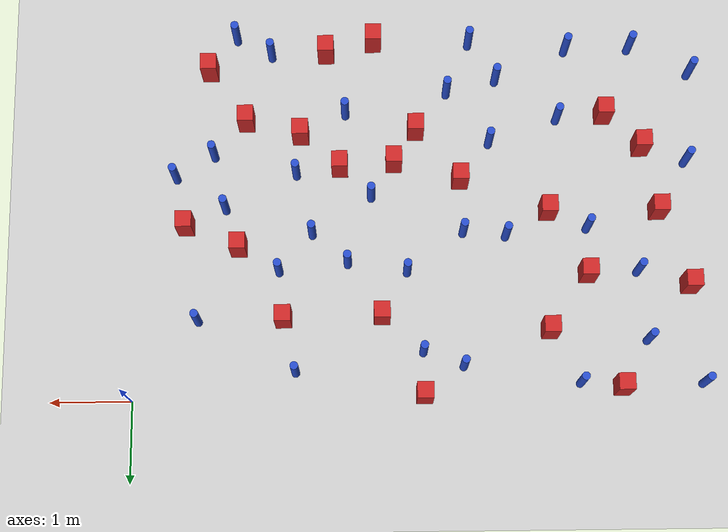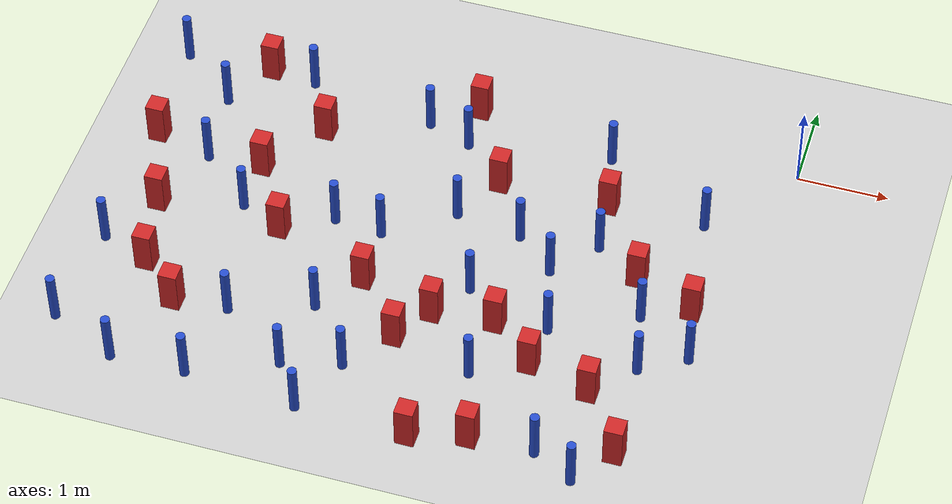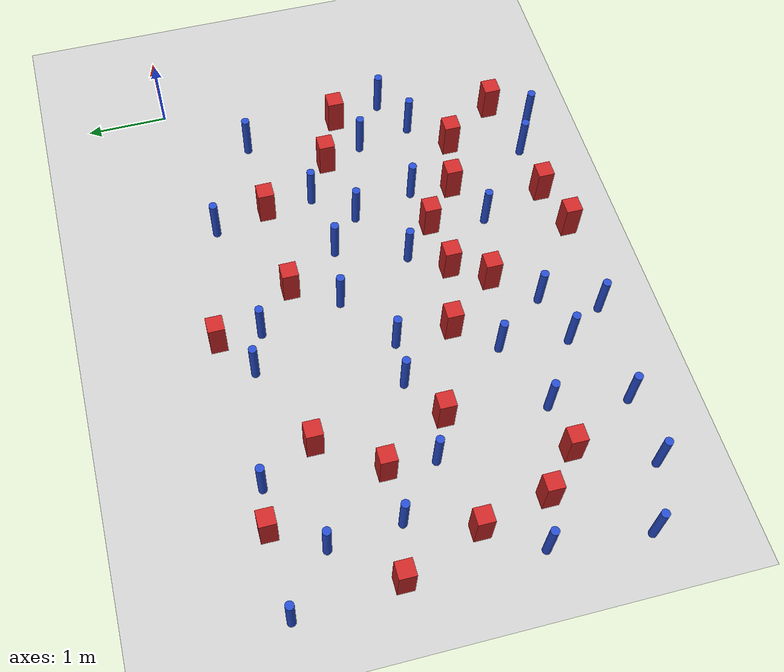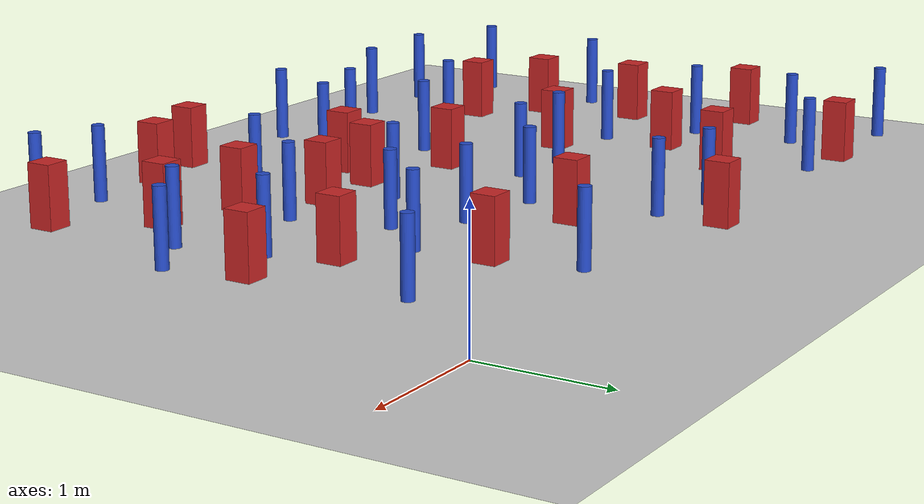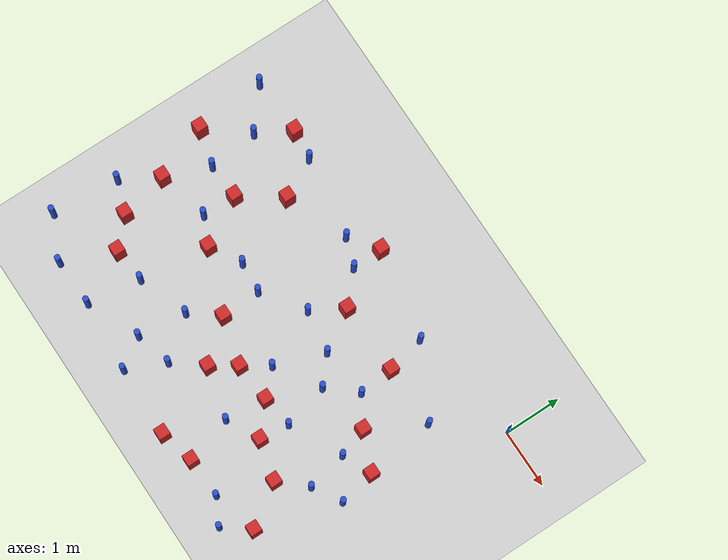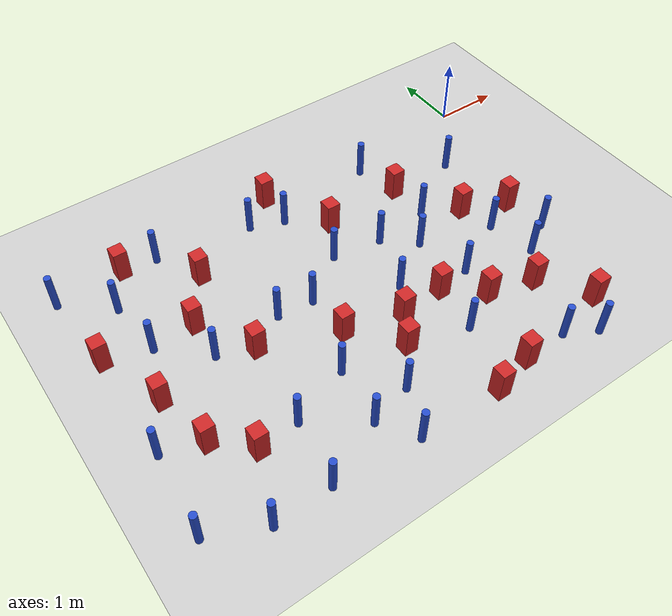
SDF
<sdf version="1.6">
 <world name="default">
  <model name="ground_plane">
   <static>1</static>
   <link name="link">
    <collision name="collision">
     <geometry><plane><normal>0 0 1</normal><size>100 100</size></plane></geometry>
     <surface><friction><ode><mu>100</mu><mu2>50</mu2></ode></friction></surface>
    </collision>
    <visual name="visual">
     <cast_shadows>0</cast_shadows>
     <geometry><plane><normal>0 0 1</normal><size>100 100</size></plane></geometry>
     <material>
      <ambient>1.0 1.0 1.0 1.0</ambient>
      <diffuse>0.8 0.8 0.8 1.0</diffuse>
      <specular>0.01 0.01 0.01 1.000000</specular>
     </material>
    </visual>
   </link>
  </model>
  <model name="square_post_obstacle2">
   <static>true</static>
   <pose>-6.32970047965 -3.15536680253 -6.11067671241e-07 -5.50515727128e-06 -8.79689657224e-07 2.37013304536e-05</pose>
   <link name="link">
    <pose>0 0 0.25 0 -0 0</pose>
    <inertial>
     <mass>100</mass>
     <inertia>
      <ixx>0.166667</ixx>
      <ixy>0</ixy>
      <ixz>0</ixz>
      <iyy>0.166667</iyy>
      <iyz>0</iyz>
      <izz>0.166667</izz>
     </inertia>
    </inertial>
    <collision name="collision"><geometry><box><size>.2 .2 .5</size></box></geometry></collision>
    <visual name="visual">
     <geometry><box><size>.2 .2 .5</size></box></geometry>
     <material>
      <script><name>Gazebo/Red</name><uri>file://media/materials/scripts/gazebo.material</uri></script>
     </material>
    </visual>
   </link>
  </model>
  <model name="pole_obstacle3">
   <static>true</static>
   <pose>-6.2227342623 -1.54788043869 -9.47619616065e-06 5.49618799738e-07 2.36310414071e-07 -1.55090534796e-07</pose>
   <link name="link">
    <pose>0 0 0.3 0 -0 0</pose>
    <inertial>
     <mass>1</mass>
     <inertia><ixx>0.145833</ixx><ixy>0</ixy><ixz>0</ixz><iyy>0.145833</iyy><iyz>0</iyz><izz>0.125</izz></inertia>
    </inertial>
    <collision name="collision">
     <geometry><cylinder><radius>0.05</radius><length>.6</length></cylinder></geometry>
    </collision>
    <visual name="visual">
     <geometry><cylinder><radius>0.05</radius><length>.6</length></cylinder></geometry>
     <material>
      <script><name>Gazebo/Blue</name><uri>file://media/materials/scripts/gazebo.material</uri></script>
     </material>
    </visual>
   </link>
  </model>
  <model name="pole_obstacle18">
   <static>true</static>
   <pose>-5.42725805433 -4.45075135304 -9.47619616065e-06 5.49618799737e-07 2.36310414037e-07 -1.55090534814e-07</pose>
   <link name="link">
    <pose>0 0 0.3 0 -0 0</pose>
    <inertial>
     <mass>1</mass>
     <inertia><ixx>0.145833</ixx><ixy>0</ixy><ixz>0</ixz><iyy>0.145833</iyy><iyz>0</iyz><izz>0.125</izz></inertia>
    </inertial>
    <collision name="collision">
     <geometry><cylinder><radius>0.05</radius><length>.6</length></cylinder></geometry>
    </collision>
    <visual name="visual">
     <geometry><cylinder><radius>0.05</radius><length>.6</length></cylinder></geometry>
     <material>
      <script><name>Gazebo/Blue</name><uri>file://media/materials/scripts/gazebo.material</uri></script>
     </material>
    </visual>
   </link>
  </model>
  <model name="pole_obstacle28">
   <static>true</static>
   <pose>-5.46663983944 -0.166174461687 -9.47619616065e-06 5.49618799737e-07 2.36310414076e-07 -1.55090534792e-07</pose>
   <link name="link">
    <pose>0 0 0.3 0 -0 0</pose>
    <inertial>
     <mass>1</mass>
     <inertia><ixx>0.145833</ixx><ixy>0</ixy><ixz>0</ixz><iyy>0.145833</iyy><iyz>0</iyz><izz>0.125</izz></inertia>
    </inertial>
    <collision name="collision">
     <geometry><cylinder><radius>0.05</radius><length>.6</length></cylinder></geometry>
    </collision>
    <visual name="visual">
     <geometry><cylinder><radius>0.05</radius><length>.6</length></cylinder></geometry>
     <material>
      <script><name>Gazebo/Blue</name><uri>file://media/materials/scripts/gazebo.material</uri></script>
     </material>
    </visual>
   </link>
  </model>
  <model name="pole_obstacle36">
   <static>true</static>
   <pose>-1.99802977172 -0.329022302632 -9.47619616065e-06 5.49618799738e-07 2.36310414057e-07 -1.55090534802e-07</pose>
   <link name="link">
    <pose>0 0 0.3 0 -0 0</pose>
    <inertial>
     <mass>1</mass>
     <inertia><ixx>0.145833</ixx><ixy>0</ixy><ixz>0</ixz><iyy>0.145833</iyy><iyz>0</iyz><izz>0.125</izz></inertia>
    </inertial>
    <collision name="collision">
     <geometry><cylinder><radius>0.05</radius><length>.6</length></cylinder></geometry>
    </collision>
    <visual name="visual">
     <geometry><cylinder><radius>0.05</radius><length>.6</length></cylinder></geometry>
     <material>
      <script><name>Gazebo/Blue</name><uri>file://media/materials/scripts/gazebo.material</uri></script>
     </material>
    </visual>
   </link>
  </model>
  <model name="pole_obstacle41">
   <static>true</static>
   <pose>-4.04974386628 -0.385702119762 -9.47619616065e-06 5.49618799737e-07 2.36310414059e-07 -1.55090534801e-07</pose>
   <link name="link">
    <pose>0 0 0.3 0 -0 0</pose>
    <inertial>
     <mass>1</mass>
     <inertia><ixx>0.145833</ixx><ixy>0</ixy><ixz>0</ixz><iyy>0.145833</iyy><iyz>0</iyz><izz>0.125</izz></inertia>
    </inertial>
    <collision name="collision">
     <geometry><cylinder><radius>0.05</radius><length>.6</length></cylinder></geometry>
    </collision>
    <visual name="visual">
     <geometry><cylinder><radius>0.05</radius><length>.6</length></cylinder></geometry>
     <material>
      <script><name>Gazebo/Blue</name><uri>file://media/materials/scripts/gazebo.material</uri></script>
     </material>
    </visual>
   </link>
  </model>
  <model name="pole_obstacle48">
   <static>true</static>
   <pose>-5.61706188393 -2.10685535667 -9.47619616065e-06 5.49618799738e-07 2.36310414051e-07 -1.55090534805e-07</pose>
   <link name="link">
    <pose>0 0 0.3 0 -0 0</pose>
    <inertial>
     <mass>1</mass>
     <inertia><ixx>0.145833</ixx><ixy>0</ixy><ixz>0</ixz><iyy>0.145833</iyy><iyz>0</iyz><izz>0.125</izz></inertia>
    </inertial>
    <collision name="collision">
     <geometry><cylinder><radius>0.05</radius><length>.6</length></cylinder></geometry>
    </collision>
    <visual name="visual">
     <geometry><cylinder><radius>0.05</radius><length>.6</length></cylinder></geometry>
     <material>
      <script><name>Gazebo/Blue</name><uri>file://media/materials/scripts/gazebo.material</uri></script>
     </material>
    </visual>
   </link>
  </model>
  <model name="square_post_obstacle54">
   <static>true</static>
   <pose>-5.13374269177 -2.32955236682 -6.11067671241e-07 -5.50515727128e-06 -8.79689657224e-07 2.37013304536e-05</pose>
   <link name="link">
    <pose>0 0 0.25 0 -0 0</pose>
    <inertial>
     <mass>100</mass>
     <inertia>
      <ixx>0.166667</ixx>
      <ixy>0</ixy>
      <ixz>0</ixz>
      <iyy>0.166667</iyy>
      <iyz>0</iyz>
      <izz>0.166667</izz>
     </inertia>
    </inertial>
    <collision name="collision"><geometry><box><size>.2 .2 .5</size></box></geometry></collision>
    <visual name="visual">
     <geometry><box><size>.2 .2 .5</size></box></geometry>
     <material>
      <script><name>Gazebo/Red</name><uri>file://media/materials/scripts/gazebo.material</uri></script>
     </material>
    </visual>
   </link>
  </model>
  <model name="square_post_obstacle55">
   <static>true</static>
   <pose>-6.855290075 -1.37495904561 -6.11067671241e-07 -5.50515727128e-06 -8.79689657224e-07 2.37013304536e-05</pose>
   <link name="link">
    <pose>0 0 0.25 0 -0 0</pose>
    <inertial>
     <mass>100</mass>
     <inertia>
      <ixx>0.166667</ixx>
      <ixy>0</ixy>
      <ixz>0</ixz>
      <iyy>0.166667</iyy>
      <iyz>0</iyz>
      <izz>0.166667</izz>
     </inertia>
    </inertial>
    <collision name="collision"><geometry><box><size>.2 .2 .5</size></box></geometry></collision>
    <visual name="visual">
     <geometry><box><size>.2 .2 .5</size></box></geometry>
     <material>
      <script><name>Gazebo/Red</name><uri>file://media/materials/scripts/gazebo.material</uri></script>
     </material>
    </visual>
   </link>
  </model>
  <model name="pole_obstacle53">
   <static>true</static>
   <pose>-4.60694974323 -2.01808500162 -9.47619616065e-06 5.49618799737e-07 2.36310414063e-07 -1.55090534798e-07</pose>
   <link name="link">
    <pose>0 0 0.3 0 -0 0</pose>
    <inertial>
     <mass>1</mass>
     <inertia><ixx>0.145833</ixx><ixy>0</ixy><ixz>0</ixz><iyy>0.145833</iyy><iyz>0</iyz><izz>0.125</izz></inertia>
    </inertial>
    <collision name="collision">
     <geometry><cylinder><radius>0.05</radius><length>.6</length></cylinder></geometry>
    </collision>
    <visual name="visual">
     <geometry><cylinder><radius>0.05</radius><length>.6</length></cylinder></geometry>
     <material>
      <script><name>Gazebo/Blue</name><uri>file://media/materials/scripts/gazebo.material</uri></script>
     </material>
    </visual>
   </link>
  </model>
  <model name="pole_obstacle56">
   <static>true</static>
   <pose>-5.28809597755 -3.53105260636 -9.47619616065e-06 5.49618799738e-07 2.36310414051e-07 -1.55090534805e-07</pose>
   <link name="link">
    <pose>0 0 0.3 0 -0 0</pose>
    <inertial>
     <mass>1</mass>
     <inertia><ixx>0.145833</ixx><ixy>0</ixy><ixz>0</ixz><iyy>0.145833</iyy><iyz>0</iyz><izz>0.125</izz></inertia>
    </inertial>
    <collision name="collision">
     <geometry><cylinder><radius>0.05</radius><length>.6</length></cylinder></geometry>
    </collision>
    <visual name="visual">
     <geometry><cylinder><radius>0.05</radius><length>.6</length></cylinder></geometry>
     <material>
      <script><name>Gazebo/Blue</name><uri>file://media/materials/scripts/gazebo.material</uri></script>
     </material>
    </visual>
   </link>
  </model>
  <model name="pole_obstacle58">
   <static>true</static>
   <pose>-4.42603766502 -3.22605797215 -9.47619616065e-06 5.49618799738e-07 2.36310414051e-07 -1.55090534805e-07</pose>
   <link name="link">
    <pose>0 0 0.3 0 -0 0</pose>
    <inertial>
     <mass>1</mass>
     <inertia><ixx>0.145833</ixx><ixy>0</ixy><ixz>0</ixz><iyy>0.145833</iyy><iyz>0</iyz><izz>0.125</izz></inertia>
    </inertial>
    <collision name="collision">
     <geometry><cylinder><radius>0.05</radius><length>.6</length></cylinder></geometry>
    </collision>
    <visual name="visual">
     <geometry><cylinder><radius>0.05</radius><length>.6</length></cylinder></geometry>
     <material>
      <script><name>Gazebo/Blue</name><uri>file://media/materials/scripts/gazebo.material</uri></script>
     </material>
    </visual>
   </link>
  </model>
  <model name="square_post_obstacle66">
   <static>true</static>
   <pose>-3.05830245506 -1.02510661945 -6.11067671241e-07 -5.50515727128e-06 -8.79689657224e-07 2.37013304536e-05</pose>
   <link name="link">
    <pose>0 0 0.25 0 -0 0</pose>
    <inertial>
     <mass>100</mass>
     <inertia>
      <ixx>0.166667</ixx>
      <ixy>0</ixy>
      <ixz>0</ixz>
      <iyy>0.166667</iyy>
      <iyz>0</iyz>
      <izz>0.166667</izz>
     </inertia>
    </inertial>
    <collision name="collision"><geometry><box><size>.2 .2 .5</size></box></geometry></collision>
    <visual name="visual">
     <geometry><box><size>.2 .2 .5</size></box></geometry>
     <material>
      <script><name>Gazebo/Red</name><uri>file://media/materials/scripts/gazebo.material</uri></script>
     </material>
    </visual>
   </link>
  </model>
  <model name="pole_obstacle64">
   <static>true</static>
   <pose>-6.88025914038 -2.95133005864 -9.47619616065e-06 5.49618799738e-07 2.36310414051e-07 -1.55090534805e-07</pose>
   <link name="link">
    <pose>0 0 0.3 0 -0 0</pose>
    <inertial>
     <mass>1</mass>
     <inertia><ixx>0.145833</ixx><ixy>0</ixy><ixz>0</ixz><iyy>0.145833</iyy><iyz>0</iyz><izz>0.125</izz></inertia>
    </inertial>
    <collision name="collision">
     <geometry><cylinder><radius>0.05</radius><length>.6</length></cylinder></geometry>
    </collision>
    <visual name="visual">
     <geometry><cylinder><radius>0.05</radius><length>.6</length></cylinder></geometry>
     <material>
      <script><name>Gazebo/Blue</name><uri>file://media/materials/scripts/gazebo.material</uri></script>
     </material>
    </visual>
   </link>
  </model>
  <model name="pole_obstacle67">
   <static>true</static>
   <pose>-3.37593583906 -1.57119827152 -9.47619616065e-06 5.49618799737e-07 2.36310414072e-07 -1.55090534793e-07</pose>
   <link name="link">
    <pose>0 0 0.3 0 -0 0</pose>
    <inertial>
     <mass>1</mass>
     <inertia><ixx>0.145833</ixx><ixy>0</ixy><ixz>0</ixz><iyy>0.145833</iyy><iyz>0</iyz><izz>0.125</izz></inertia>
    </inertial>
    <collision name="collision">
     <geometry><cylinder><radius>0.05</radius><length>.6</length></cylinder></geometry>
    </collision>
    <visual name="visual">
     <geometry><cylinder><radius>0.05</radius><length>.6</length></cylinder></geometry>
     <material>
      <script><name>Gazebo/Blue</name><uri>file://media/materials/scripts/gazebo.material</uri></script>
     </material>
    </visual>
   </link>
  </model>
  <model name="square_post_obstacle71">
   <static>true</static>
   <pose>-3.22741583679 -2.97727601868 -6.11067671241e-07 -5.50515727128e-06 -8.79689657224e-07 2.37013304536e-05</pose>
   <link name="link">
    <pose>0 0 0.25 0 -0 0</pose>
    <inertial>
     <mass>100</mass>
     <inertia>
      <ixx>0.166667</ixx>
      <ixy>0</ixy>
      <ixz>0</ixz>
      <iyy>0.166667</iyy>
      <iyz>0</iyz>
      <izz>0.166667</izz>
     </inertia>
    </inertial>
    <collision name="collision"><geometry><box><size>.2 .2 .5</size></box></geometry></collision>
    <visual name="visual">
     <geometry><box><size>.2 .2 .5</size></box></geometry>
     <material>
      <script><name>Gazebo/Red</name><uri>file://media/materials/scripts/gazebo.material</uri></script>
     </material>
    </visual>
   </link>
  </model>
  <model name="pole_obstacle84">
   <static>true</static>
   <pose>-4.19764110982 -4.55271410597 -9.47619616065e-06 5.49618799737e-07 2.36310414037e-07 -1.55090534814e-07</pose>
   <link name="link">
    <pose>0 0 0.3 0 -0 0</pose>
    <inertial>
     <mass>1</mass>
     <inertia><ixx>0.145833</ixx><ixy>0</ixy><ixz>0</ixz><iyy>0.145833</iyy><iyz>0</iyz><izz>0.125</izz></inertia>
    </inertial>
    <collision name="collision">
     <geometry><cylinder><radius>0.05</radius><length>.6</length></cylinder></geometry>
    </collision>
    <visual name="visual">
     <geometry><cylinder><radius>0.05</radius><length>.6</length></cylinder></geometry>
     <material>
      <script><name>Gazebo/Blue</name><uri>file://media/materials/scripts/gazebo.material</uri></script>
     </material>
    </visual>
   </link>
  </model>
  <model name="pole_obstacle98">
   <static>true</static>
   <pose>-1.12800165078 -2.39577294056 -9.47619616065e-06 5.49618799737e-07 2.36310414062e-07 -1.55090534798e-07</pose>
   <link name="link">
    <pose>0 0 0.3 0 -0 0</pose>
    <inertial>
     <mass>1</mass>
     <inertia><ixx>0.145833</ixx><ixy>0</ixy><ixz>0</ixz><iyy>0.145833</iyy><iyz>0</iyz><izz>0.125</izz></inertia>
    </inertial>
    <collision name="collision">
     <geometry><cylinder><radius>0.05</radius><length>.6</length></cylinder></geometry>
    </collision>
    <visual name="visual">
     <geometry><cylinder><radius>0.05</radius><length>.6</length></cylinder></geometry>
     <material>
      <script><name>Gazebo/Blue</name><uri>file://media/materials/scripts/gazebo.material</uri></script>
     </material>
    </visual>
   </link>
  </model>
  <model name="pole_obstacle103">
   <static>true</static>
   <pose>-2.62564040863 -3.62918442131 -9.47619616065e-06 5.49618799737e-07 2.36310414051e-07 -1.55090534807e-07</pose>
   <link name="link">
    <pose>0 0 0.3 0 -0 0</pose>
    <inertial>
     <mass>1</mass>
     <inertia><ixx>0.145833</ixx><ixy>0</ixy><ixz>0</ixz><iyy>0.145833</iyy><iyz>0</iyz><izz>0.125</izz></inertia>
    </inertial>
    <collision name="collision">
     <geometry><cylinder><radius>0.05</radius><length>.6</length></cylinder></geometry>
    </collision>
    <visual name="visual">
     <geometry><cylinder><radius>0.05</radius><length>.6</length></cylinder></geometry>
     <material>
      <script><name>Gazebo/Blue</name><uri>file://media/materials/scripts/gazebo.material</uri></script>
     </material>
    </visual>
   </link>
  </model>
  <model name="square_post_obstacle92">
   <static>true</static>
   <pose>-0.91803826967 -4.21366810012 -6.11067671241e-07 -5.50515727128e-06 -8.79689657224e-07 2.37013304536e-05</pose>
   <link name="link">
    <pose>0 0 0.25 0 -0 0</pose>
    <inertial>
     <mass>100</mass>
     <inertia>
      <ixx>0.166667</ixx>
      <ixy>0</ixy>
      <ixz>0</ixz>
      <iyy>0.166667</iyy>
      <iyz>0</iyz>
      <izz>0.166667</izz>
     </inertia>
    </inertial>
    <collision name="collision"><geometry><box><size>.2 .2 .5</size></box></geometry></collision>
    <visual name="visual">
     <geometry><box><size>.2 .2 .5</size></box></geometry>
     <material>
      <script><name>Gazebo/Red</name><uri>file://media/materials/scripts/gazebo.material</uri></script>
     </material>
    </visual>
   </link>
  </model>
  <model name="square_post_obstacle98">
   <static>true</static>
   <pose>-1.38392548692 -3.52940145345 -6.11067671241e-07 -5.50515727128e-06 -8.79689657224e-07 2.37013304536e-05</pose>
   <link name="link">
    <pose>0 0 0.25 0 -0 0</pose>
    <inertial>
     <mass>100</mass>
     <inertia>
      <ixx>0.166667</ixx>
      <ixy>0</ixy>
      <ixz>0</ixz>
      <iyy>0.166667</iyy>
      <iyz>0</iyz>
      <izz>0.166667</izz>
     </inertia>
    </inertial>
    <collision name="collision"><geometry><box><size>.2 .2 .5</size></box></geometry></collision>
    <visual name="visual">
     <geometry><box><size>.2 .2 .5</size></box></geometry>
     <material>
      <script><name>Gazebo/Red</name><uri>file://media/materials/scripts/gazebo.material</uri></script>
     </material>
    </visual>
   </link>
  </model>
  <model name="square_post_obstacle100">
   <static>true</static>
   <pose>-5.9712161003 -0.116005720115 -6.11067671241e-07 -5.50515727128e-06 -8.79689657224e-07 2.37013304536e-05</pose>
   <link name="link">
    <pose>0 0 0.25 0 -0 0</pose>
    <inertial>
     <mass>100</mass>
     <inertia>
      <ixx>0.166667</ixx>
      <ixy>0</ixy>
      <ixz>0</ixz>
      <iyy>0.166667</iyy>
      <iyz>0</iyz>
      <izz>0.166667</izz>
     </inertia>
    </inertial>
    <collision name="collision"><geometry><box><size>.2 .2 .5</size></box></geometry></collision>
    <visual name="visual">
     <geometry><box><size>.2 .2 .5</size></box></geometry>
     <material>
      <script><name>Gazebo/Red</name><uri>file://media/materials/scripts/gazebo.material</uri></script>
     </material>
    </visual>
   </link>
  </model>
  <model name="square_post_obstacle106">
   <static>true</static>
   <pose>-2.38690763642 -4.43865126905 -6.11067671241e-07 -5.50515727128e-06 -8.79689657224e-07 2.37013304536e-05</pose>
   <link name="link">
    <pose>0 0 0.25 0 -0 0</pose>
    <inertial>
     <mass>100</mass>
     <inertia>
      <ixx>0.166667</ixx>
      <ixy>0</ixy>
      <ixz>0</ixz>
      <iyy>0.166667</iyy>
      <iyz>0</iyz>
      <izz>0.166667</izz>
     </inertia>
    </inertial>
    <collision name="collision"><geometry><box><size>.2 .2 .5</size></box></geometry></collision>
    <visual name="visual">
     <geometry><box><size>.2 .2 .5</size></box></geometry>
     <material>
      <script><name>Gazebo/Red</name><uri>file://media/materials/scripts/gazebo.material</uri></script>
     </material>
    </visual>
   </link>
  </model>
  <model name="square_post_obstacle107">
   <static>true</static>
   <pose>-5.87607177897 -3.58574316841 -6.11067671241e-07 -5.50515727128e-06 -8.79689657224e-07 2.37013304536e-05</pose>
   <link name="link">
    <pose>0 0 0.25 0 -0 0</pose>
    <inertial>
     <mass>100</mass>
     <inertia>
      <ixx>0.166667</ixx>
      <ixy>0</ixy>
      <ixz>0</ixz>
      <iyy>0.166667</iyy>
      <iyz>0</iyz>
      <izz>0.166667</izz>
     </inertia>
    </inertial>
    <collision name="collision"><geometry><box><size>.2 .2 .5</size></box></geometry></collision>
    <visual name="visual">
     <geometry><box><size>.2 .2 .5</size></box></geometry>
     <material>
      <script><name>Gazebo/Red</name><uri>file://media/materials/scripts/gazebo.material</uri></script>
     </material>
    </visual>
   </link>
  </model>
  <model name="pole_obstacle119">
   <static>true</static>
   <pose>-1.253816084 -4.64852690682 -9.47619616065e-06 5.49618799737e-07 2.36310414061e-07 -1.550905348e-07</pose>
   <link name="link">
    <pose>0 0 0.3 0 -0 0</pose>
    <inertial>
     <mass>1</mass>
     <inertia><ixx>0.145833</ixx><ixy>0</ixy><ixz>0</ixz><iyy>0.145833</iyy><iyz>0</iyz><izz>0.125</izz></inertia>
    </inertial>
    <collision name="collision">
     <geometry><cylinder><radius>0.05</radius><length>.6</length></cylinder></geometry>
    </collision>
    <visual name="visual">
     <geometry><cylinder><radius>0.05</radius><length>.6</length></cylinder></geometry>
     <material>
      <script><name>Gazebo/Blue</name><uri>file://media/materials/scripts/gazebo.material</uri></script>
     </material>
    </visual>
   </link>
  </model>
  <model name="pole_obstacle125">
   <static>true</static>
   <pose>-6.96087277076 -0.147386031857 -9.47619616065e-06 5.49618799737e-07 2.36310414076e-07 -1.55090534792e-07</pose>
   <link name="link">
    <pose>0 0 0.3 0 -0 0</pose>
    <inertial>
     <mass>1</mass>
     <inertia><ixx>0.145833</ixx><ixy>0</ixy><ixz>0</ixz><iyy>0.145833</iyy><iyz>0</iyz><izz>0.125</izz></inertia>
    </inertial>
    <collision name="collision">
     <geometry><cylinder><radius>0.05</radius><length>.6</length></cylinder></geometry>
    </collision>
    <visual name="visual">
     <geometry><cylinder><radius>0.05</radius><length>.6</length></cylinder></geometry>
     <material>
      <script><name>Gazebo/Blue</name><uri>file://media/materials/scripts/gazebo.material</uri></script>
     </material>
    </visual>
   </link>
  </model>
  <model name="pole_obstacle133">
   <static>true</static>
   <pose>-2.00936278664 -2.83754601112 -9.4761961606e-06 5.49618799729e-07 2.36310414004e-07 -1.55090534822e-07</pose>
   <link name="link">
    <pose>0 0 0.3 0 -0 0</pose>
    <inertial>
     <mass>1</mass>
     <inertia><ixx>0.145833</ixx><ixy>0</ixy><ixz>0</ixz><iyy>0.145833</iyy><iyz>0</iyz><izz>0.125</izz></inertia>
    </inertial>
    <collision name="collision">
     <geometry><cylinder><radius>0.05</radius><length>.6</length></cylinder></geometry>
    </collision>
    <visual name="visual">
     <geometry><cylinder><radius>0.05</radius><length>.6</length></cylinder></geometry>
     <material>
      <script><name>Gazebo/Blue</name><uri>file://media/materials/scripts/gazebo.material</uri></script>
     </material>
    </visual>
   </link>
  </model>
  <model name="square_post_obstacle115">
   <static>true</static>
   <pose>-5.5994442488 -1.52624086843 -6.11067671241e-07 -5.50515727128e-06 -8.79689657224e-07 2.37013304536e-05</pose>
   <link name="link">
    <pose>0 0 0.25 0 -0 0</pose>
    <inertial>
     <mass>100</mass>
     <inertia>
      <ixx>0.166667</ixx>
      <ixy>0</ixy>
      <ixz>0</ixz>
      <iyy>0.166667</iyy>
      <iyz>0</iyz>
      <izz>0.166667</izz>
     </inertia>
    </inertial>
    <collision name="collision"><geometry><box><size>.2 .2 .5</size></box></geometry></collision>
    <visual name="visual">
     <geometry><box><size>.2 .2 .5</size></box></geometry>
     <material>
      <script><name>Gazebo/Red</name><uri>file://media/materials/scripts/gazebo.material</uri></script>
     </material>
    </visual>
   </link>
  </model>
  <model name="pole_obstacle134">
   <static>true</static>
   <pose>-1.69678803983 -4.41524176581 -9.47619616065e-06 5.49618799737e-07 2.36310414061e-07 -1.550905348e-07</pose>
   <link name="link">
    <pose>0 0 0.3 0 -0 0</pose>
    <inertial>
     <mass>1</mass>
     <inertia><ixx>0.145833</ixx><ixy>0</ixy><ixz>0</ixz><iyy>0.145833</iyy><iyz>0</iyz><izz>0.125</izz></inertia>
    </inertial>
    <collision name="collision">
     <geometry><cylinder><radius>0.05</radius><length>.6</length></cylinder></geometry>
    </collision>
    <visual name="visual">
     <geometry><cylinder><radius>0.05</radius><length>.6</length></cylinder></geometry>
     <material>
      <script><name>Gazebo/Blue</name><uri>file://media/materials/scripts/gazebo.material</uri></script>
     </material>
    </visual>
   </link>
  </model>
  <model name="square_post_obstacle116">
   <static>true</static>
   <pose>-4.0516768545 -2.74814570862 -6.11067671241e-07 -5.50515727128e-06 -8.79689657224e-07 2.37013304536e-05</pose>
   <link name="link">
    <pose>0 0 0.25 0 -0 0</pose>
    <inertial>
     <mass>100</mass>
     <inertia>
      <ixx>0.166667</ixx>
      <ixy>0</ixy>
      <ixz>0</ixz>
      <iyy>0.166667</iyy>
      <iyz>0</iyz>
      <izz>0.166667</izz>
     </inertia>
    </inertial>
    <collision name="collision"><geometry><box><size>.2 .2 .5</size></box></geometry></collision>
    <visual name="visual">
     <geometry><box><size>.2 .2 .5</size></box></geometry>
     <material>
      <script><name>Gazebo/Red</name><uri>file://media/materials/scripts/gazebo.material</uri></script>
     </material>
    </visual>
   </link>
  </model>
  <model name="square_post_obstacle119">
   <static>true</static>
   <pose>-3.50580680735 -3.39735706076 -6.11067671241e-07 -5.50515727128e-06 -8.79689657224e-07 2.37013304536e-05</pose>
   <link name="link">
    <pose>0 0 0.25 0 -0 0</pose>
    <inertial>
     <mass>100</mass>
     <inertia>
      <ixx>0.166667</ixx>
      <ixy>0</ixy>
      <ixz>0</ixz>
      <iyy>0.166667</iyy>
      <iyz>0</iyz>
      <izz>0.166667</izz>
     </inertia>
    </inertial>
    <collision name="collision"><geometry><box><size>.2 .2 .5</size></box></geometry></collision>
    <visual name="visual">
     <geometry><box><size>.2 .2 .5</size></box></geometry>
     <material>
      <script><name>Gazebo/Red</name><uri>file://media/materials/scripts/gazebo.material</uri></script>
     </material>
    </visual>
   </link>
  </model>
  <model name="square_post_obstacle130">
   <static>true</static>
   <pose>-1.29624027152 -1.9000049358 -6.11067671241e-07 -5.50515727128e-06 -8.79689657224e-07 2.37013304536e-05</pose>
   <link name="link">
    <pose>0 0 0.25 0 -0 0</pose>
    <inertial>
     <mass>100</mass>
     <inertia>
      <ixx>0.166667</ixx>
      <ixy>0</ixy>
      <ixz>0</ixz>
      <iyy>0.166667</iyy>
      <iyz>0</iyz>
      <izz>0.166667</izz>
     </inertia>
    </inertial>
    <collision name="collision"><geometry><box><size>.2 .2 .5</size></box></geometry></collision>
    <visual name="visual">
     <geometry><box><size>.2 .2 .5</size></box></geometry>
     <material>
      <script><name>Gazebo/Red</name><uri>file://media/materials/scripts/gazebo.material</uri></script>
     </material>
    </visual>
   </link>
  </model>
  <model name="pole_obstacle146">
   <static>true</static>
   <pose>-6.23913776467 -4.46846363022 -9.47619616065e-06 5.49618799737e-07 2.36310414037e-07 -1.55090534814e-07</pose>
   <link name="link">
    <pose>0 0 0.3 0 -0 0</pose>
    <inertial>
     <mass>1</mass>
     <inertia><ixx>0.145833</ixx><ixy>0</ixy><ixz>0</ixz><iyy>0.145833</iyy><iyz>0</iyz><izz>0.125</izz></inertia>
    </inertial>
    <collision name="collision">
     <geometry><cylinder><radius>0.05</radius><length>.6</length></cylinder></geometry>
    </collision>
    <visual name="visual">
     <geometry><cylinder><radius>0.05</radius><length>.6</length></cylinder></geometry>
     <material>
      <script><name>Gazebo/Blue</name><uri>file://media/materials/scripts/gazebo.material</uri></script>
     </material>
    </visual>
   </link>
  </model>
  <model name="pole_obstacle148">
   <static>true</static>
   <pose>-3.90503645122 -3.89446864961 -9.47619616065e-06 5.49618799737e-07 2.36310414067e-07 -1.55090534797e-07</pose>
   <link name="link">
    <pose>0 0 0.3 0 -0 0</pose>
    <inertial>
     <mass>1</mass>
     <inertia><ixx>0.145833</ixx><ixy>0</ixy><ixz>0</ixz><iyy>0.145833</iyy><iyz>0</iyz><izz>0.125</izz></inertia>
    </inertial>
    <collision name="collision">
     <geometry><cylinder><radius>0.05</radius><length>.6</length></cylinder></geometry>
    </collision>
    <visual name="visual">
     <geometry><cylinder><radius>0.05</radius><length>.6</length></cylinder></geometry>
     <material>
      <script><name>Gazebo/Blue</name><uri>file://media/materials/scripts/gazebo.material</uri></script>
     </material>
    </visual>
   </link>
  </model>
  <model name="pole_obstacle150">
   <static>true</static>
   <pose>-1.79447766548 -1.59149277906 -9.47619616065e-06 5.49618799737e-07 2.36310414065e-07 -1.55090534798e-07</pose>
   <link name="link">
    <pose>0 0 0.3 0 -0 0</pose>
    <inertial>
     <mass>1</mass>
     <inertia><ixx>0.145833</ixx><ixy>0</ixy><ixz>0</ixz><iyy>0.145833</iyy><iyz>0</iyz><izz>0.125</izz></inertia>
    </inertial>
    <collision name="collision">
     <geometry><cylinder><radius>0.05</radius><length>.6</length></cylinder></geometry>
    </collision>
    <visual name="visual">
     <geometry><cylinder><radius>0.05</radius><length>.6</length></cylinder></geometry>
     <material>
      <script><name>Gazebo/Blue</name><uri>file://media/materials/scripts/gazebo.material</uri></script>
     </material>
    </visual>
   </link>
  </model>
  <model name="square_post_obstacle141">
   <static>true</static>
   <pose>-0.636832425935 -2.17836006791 -6.11067671241e-07 -5.50515727128e-06 -8.79689657224e-07 2.37013304536e-05</pose>
   <link name="link">
    <pose>0 0 0.25 0 -0 0</pose>
    <inertial>
     <mass>100</mass>
     <inertia>
      <ixx>0.166667</ixx>
      <ixy>0</ixy>
      <ixz>0</ixz>
      <iyy>0.166667</iyy>
      <iyz>0</iyz>
      <izz>0.166667</izz>
     </inertia>
    </inertial>
    <collision name="collision"><geometry><box><size>.2 .2 .5</size></box></geometry></collision>
    <visual name="visual">
     <geometry><box><size>.2 .2 .5</size></box></geometry>
     <material>
      <script><name>Gazebo/Red</name><uri>file://media/materials/scripts/gazebo.material</uri></script>
     </material>
    </visual>
   </link>
  </model>
  <model name="pole_obstacle154">
   <static>true</static>
   <pose>-2.94219507623 -2.537488307 -9.47619616065e-06 5.49618799737e-07 2.36310414051e-07 -1.55090534807e-07</pose>
   <link name="link">
    <pose>0 0 0.3 0 -0 0</pose>
    <inertial>
     <mass>1</mass>
     <inertia><ixx>0.145833</ixx><ixy>0</ixy><ixz>0</ixz><iyy>0.145833</iyy><iyz>0</iyz><izz>0.125</izz></inertia>
    </inertial>
    <collision name="collision">
     <geometry><cylinder><radius>0.05</radius><length>.6</length></cylinder></geometry>
    </collision>
    <visual name="visual">
     <geometry><cylinder><radius>0.05</radius><length>.6</length></cylinder></geometry>
     <material>
      <script><name>Gazebo/Blue</name><uri>file://media/materials/scripts/gazebo.material</uri></script>
     </material>
    </visual>
   </link>
  </model>
  <model name="square_post_obstacle145">
   <static>true</static>
   <pose>-3.56459507177 -0.0406773044728 -6.11067671241e-07 -5.50515727128e-06 -8.79689657224e-07 2.37013304536e-05</pose>
   <link name="link">
    <pose>0 0 0.25 0 -0 0</pose>
    <inertial>
     <mass>100</mass>
     <inertia>
      <ixx>0.166667</ixx>
      <ixy>0</ixy>
      <ixz>0</ixz>
      <iyy>0.166667</iyy>
      <iyz>0</iyz>
      <izz>0.166667</izz>
     </inertia>
    </inertial>
    <collision name="collision"><geometry><box><size>.2 .2 .5</size></box></geometry></collision>
    <visual name="visual">
     <geometry><box><size>.2 .2 .5</size></box></geometry>
     <material>
      <script><name>Gazebo/Red</name><uri>file://media/materials/scripts/gazebo.material</uri></script>
     </material>
    </visual>
   </link>
  </model>
  <model name="square_post_obstacle152">
   <static>true</static>
   <pose>-2.98628517947 -4.58817265413 -6.11067671241e-07 -5.50515727128e-06 -8.79689657224e-07 2.37013304536e-05</pose>
   <link name="link">
    <pose>0 0 0.25 0 -0 0</pose>
    <inertial>
     <mass>100</mass>
     <inertia>
      <ixx>0.166667</ixx>
      <ixy>0</ixy>
      <ixz>0</ixz>
      <iyy>0.166667</iyy>
      <iyz>0</iyz>
      <izz>0.166667</izz>
     </inertia>
    </inertial>
    <collision name="collision"><geometry><box><size>.2 .2 .5</size></box></geometry></collision>
    <visual name="visual">
     <geometry><box><size>.2 .2 .5</size></box></geometry>
     <material>
      <script><name>Gazebo/Red</name><uri>file://media/materials/scripts/gazebo.material</uri></script>
     </material>
    </visual>
   </link>
  </model>
  <model name="pole_obstacle161">
   <static>true</static>
   <pose>-0.798910467562 -0.9754181279 -9.47619616065e-06 5.49618799737e-07 2.36310414059e-07 -1.55090534802e-07</pose>
   <link name="link">
    <pose>0 0 0.3 0 -0 0</pose>
    <inertial>
     <mass>1</mass>
     <inertia><ixx>0.145833</ixx><ixy>0</ixy><ixz>0</ixz><iyy>0.145833</iyy><iyz>0</iyz><izz>0.125</izz></inertia>
    </inertial>
    <collision name="collision">
     <geometry><cylinder><radius>0.05</radius><length>.6</length></cylinder></geometry>
    </collision>
    <visual name="visual">
     <geometry><cylinder><radius>0.05</radius><length>.6</length></cylinder></geometry>
     <material>
      <script><name>Gazebo/Blue</name><uri>file://media/materials/scripts/gazebo.material</uri></script>
     </material>
    </visual>
   </link>
  </model>
  <model name="pole_obstacle163">
   <static>true</static>
   <pose>-2.64354921361 -1.68537412186 -9.47619616065e-06 5.49618799737e-07 2.36310414072e-07 -1.55090534793e-07</pose>
   <link name="link">
    <pose>0 0 0.3 0 -0 0</pose>
    <inertial>
     <mass>1</mass>
     <inertia><ixx>0.145833</ixx><ixy>0</ixy><ixz>0</ixz><iyy>0.145833</iyy><iyz>0</iyz><izz>0.125</izz></inertia>
    </inertial>
    <collision name="collision">
     <geometry><cylinder><radius>0.05</radius><length>.6</length></cylinder></geometry>
    </collision>
    <visual name="visual">
     <geometry><cylinder><radius>0.05</radius><length>.6</length></cylinder></geometry>
     <material>
      <script><name>Gazebo/Blue</name><uri>file://media/materials/scripts/gazebo.material</uri></script>
     </material>
    </visual>
   </link>
  </model>
  <model name="pole_obstacle166">
   <static>true</static>
   <pose>-6.98414129619 -4.11907924033 -9.47619616065e-06 5.49618799737e-07 2.36310414037e-07 -1.55090534814e-07</pose>
   <link name="link">
    <pose>0 0 0.3 0 -0 0</pose>
    <inertial>
     <mass>1</mass>
     <inertia><ixx>0.145833</ixx><ixy>0</ixy><ixz>0</ixz><iyy>0.145833</iyy><iyz>0</iyz><izz>0.125</izz></inertia>
    </inertial>
    <collision name="collision">
     <geometry><cylinder><radius>0.05</radius><length>.6</length></cylinder></geometry>
    </collision>
    <visual name="visual">
     <geometry><cylinder><radius>0.05</radius><length>.6</length></cylinder></geometry>
     <material>
      <script><name>Gazebo/Blue</name><uri>file://media/materials/scripts/gazebo.material</uri></script>
     </material>
    </visual>
   </link>
  </model>
  <model name="square_post_obstacle164">
   <static>true</static>
   <pose>-1.85122884696 -0.994631745832 -6.11067671241e-07 -5.50515727128e-06 -8.79689657224e-07 2.37013304536e-05</pose>
   <link name="link">
    <pose>0 0 0.25 0 -0 0</pose>
    <inertial>
     <mass>100</mass>
     <inertia>
      <ixx>0.166667</ixx>
      <ixy>0</ixy>
      <ixz>0</ixz>
      <iyy>0.166667</iyy>
      <iyz>0</iyz>
      <izz>0.166667</izz>
     </inertia>
    </inertial>
    <collision name="collision"><geometry><box><size>.2 .2 .5</size></box></geometry></collision>
    <visual name="visual">
     <geometry><box><size>.2 .2 .5</size></box></geometry>
     <material>
      <script><name>Gazebo/Red</name><uri>file://media/materials/scripts/gazebo.material</uri></script>
     </material>
    </visual>
   </link>
  </model>
  <model name="pole_obstacle180">
   <static>true</static>
   <pose>-6.30889753926 -0.686374499972 -9.47619616065e-06 5.49618799737e-07 2.36310414061e-07 -1.550905348e-07</pose>
   <link name="link">
    <pose>0 0 0.3 0 -0 0</pose>
    <inertial>
     <mass>1</mass>
     <inertia><ixx>0.145833</ixx><ixy>0</ixy><ixz>0</ixz><iyy>0.145833</iyy><iyz>0</iyz><izz>0.125</izz></inertia>
    </inertial>
    <collision name="collision">
     <geometry><cylinder><radius>0.05</radius><length>.6</length></cylinder></geometry>
    </collision>
    <visual name="visual">
     <geometry><cylinder><radius>0.05</radius><length>.6</length></cylinder></geometry>
     <material>
      <script><name>Gazebo/Blue</name><uri>file://media/materials/scripts/gazebo.material</uri></script>
     </material>
    </visual>
   </link>
  </model>
  <model name="pole_obstacle184">
   <static>true</static>
   <pose>-4.07681053509 -2.06712277556 -9.47619616065e-06 5.49618799738e-07 2.36310414051e-07 -1.55090534805e-07</pose>
   <link name="link">
    <pose>0 0 0.3 0 -0 0</pose>
    <inertial>
     <mass>1</mass>
     <inertia><ixx>0.145833</ixx><ixy>0</ixy><ixz>0</ixz><iyy>0.145833</iyy><iyz>0</iyz><izz>0.125</izz></inertia>
    </inertial>
    <collision name="collision">
     <geometry><cylinder><radius>0.05</radius><length>.6</length></cylinder></geometry>
    </collision>
    <visual name="visual">
     <geometry><cylinder><radius>0.05</radius><length>.6</length></cylinder></geometry>
     <material>
      <script><name>Gazebo/Blue</name><uri>file://media/materials/scripts/gazebo.material</uri></script>
     </material>
    </visual>
   </link>
  </model>
  <model name="square_post_obstacle179">
   <static>true</static>
   <pose>-5.11200628268 -0.824399294524 -6.11067671241e-07 -5.50515727128e-06 -8.79689657224e-07 2.37013304536e-05</pose>
   <link name="link">
    <pose>0 0 0.25 0 -0 0</pose>
    <inertial>
     <mass>100</mass>
     <inertia>
      <ixx>0.166667</ixx>
      <ixy>0</ixy>
      <ixz>0</ixz>
      <iyy>0.166667</iyy>
      <iyz>0</iyz>
      <izz>0.166667</izz>
     </inertia>
    </inertial>
    <collision name="collision"><geometry><box><size>.2 .2 .5</size></box></geometry></collision>
    <visual name="visual">
     <geometry><box><size>.2 .2 .5</size></box></geometry>
     <material>
      <script><name>Gazebo/Red</name><uri>file://media/materials/scripts/gazebo.material</uri></script>
     </material>
    </visual>
   </link>
  </model>
  <model name="square_post_obstacle184">
   <static>true</static>
   <pose>-2.55349145992 -2.92322005533 -6.11067671241e-07 -5.50515727128e-06 -8.79689657224e-07 2.37013304536e-05</pose>
   <link name="link">
    <pose>0 0 0.25 0 -0 0</pose>
    <inertial>
     <mass>100</mass>
     <inertia>
      <ixx>0.166667</ixx>
      <ixy>0</ixy>
      <ixz>0</ixz>
      <iyy>0.166667</iyy>
      <iyz>0</iyz>
      <izz>0.166667</izz>
     </inertia>
    </inertial>
    <collision name="collision"><geometry><box><size>.2 .2 .5</size></box></geometry></collision>
    <visual name="visual">
     <geometry><box><size>.2 .2 .5</size></box></geometry>
     <material>
      <script><name>Gazebo/Red</name><uri>file://media/materials/scripts/gazebo.material</uri></script>
     </material>
    </visual>
   </link>
  </model>
  <model name="square_post_obstacle188">
   <static>true</static>
   <pose>-6.50573506824 -2.32537065835 -6.11067671241e-07 -5.50515727128e-06 -8.79689657224e-07 2.37013304536e-05</pose>
   <link name="link">
    <pose>0 0 0.25 0 -0 0</pose>
    <inertial>
     <mass>100</mass>
     <inertia>
      <ixx>0.166667</ixx>
      <ixy>0</ixy>
      <ixz>0</ixz>
      <iyy>0.166667</iyy>
      <iyz>0</iyz>
      <izz>0.166667</izz>
     </inertia>
    </inertial>
    <collision name="collision"><geometry><box><size>.2 .2 .5</size></box></geometry></collision>
    <visual name="visual">
     <geometry><box><size>.2 .2 .5</size></box></geometry>
     <material>
      <script><name>Gazebo/Red</name><uri>file://media/materials/scripts/gazebo.material</uri></script>
     </material>
    </visual>
   </link>
  </model>
  <model name="square_post_obstacle197">
   <static>true</static>
   <pose>-2.06393594952 -3.35026875391 -6.11067671241e-07 -5.50515727128e-06 -8.79689657224e-07 2.37013304536e-05</pose>
   <link name="link">
    <pose>0 0 0.25 0 -0 0</pose>
    <inertial>
     <mass>100</mass>
     <inertia>
      <ixx>0.166667</ixx>
      <ixy>0</ixy>
      <ixz>0</ixz>
      <iyy>0.166667</iyy>
      <iyz>0</iyz>
      <izz>0.166667</izz>
     </inertia>
    </inertial>
    <collision name="collision"><geometry><box><size>.2 .2 .5</size></box></geometry></collision>
    <visual name="visual">
     <geometry><box><size>.2 .2 .5</size></box></geometry>
     <material>
      <script><name>Gazebo/Red</name><uri>file://media/materials/scripts/gazebo.material</uri></script>
     </material>
    </visual>
   </link>
  </model>
  <model name="pole_obstacle194">
   <static>true</static>
   <pose>-2.20618834742 -2.06390897055 -9.47619616065e-06 5.49618799737e-07 2.36310414051e-07 -1.55090534807e-07</pose>
   <link name="link">
    <pose>0 0 0.3 0 -0 0</pose>
    <inertial>
     <mass>1</mass>
     <inertia><ixx>0.145833</ixx><ixy>0</ixy><ixz>0</ixz><iyy>0.145833</iyy><iyz>0</iyz><izz>0.125</izz></inertia>
    </inertial>
    <collision name="collision">
     <geometry><cylinder><radius>0.05</radius><length>.6</length></cylinder></geometry>
    </collision>
    <visual name="visual">
     <geometry><cylinder><radius>0.05</radius><length>.6</length></cylinder></geometry>
     <material>
      <script><name>Gazebo/Blue</name><uri>file://media/materials/scripts/gazebo.material</uri></script>
     </material>
    </visual>
   </link>
  </model>
  <model name="pole_obstacle205">
   <static>true</static>
   <pose>-4.52836479592 -4.05687082556 -9.47619616065e-06 5.49618799737e-07 2.36310414037e-07 -1.55090534814e-07</pose>
   <link name="link">
    <pose>0 0 0.3 0 -0 0</pose>
    <inertial>
     <mass>1</mass>
     <inertia><ixx>0.145833</ixx><ixy>0</ixy><ixz>0</ixz><iyy>0.145833</iyy><iyz>0</iyz><izz>0.125</izz></inertia>
    </inertial>
    <collision name="collision">
     <geometry><cylinder><radius>0.05</radius><length>.6</length></cylinder></geometry>
    </collision>
    <visual name="visual">
     <geometry><cylinder><radius>0.05</radius><length>.6</length></cylinder></geometry>
     <material>
      <script><name>Gazebo/Blue</name><uri>file://media/materials/scripts/gazebo.material</uri></script>
     </material>
    </visual>
   </link>
  </model>
  <model name="pole_obstacle211">
   <static>true</static>
   <pose>-3.55905759811 -0.564542295931 -9.47619616065e-06 5.49618799738e-07 2.36310414075e-07 -1.55090534793e-07</pose>
   <link name="link">
    <pose>0 0 0.3 0 -0 0</pose>
    <inertial>
     <mass>1</mass>
     <inertia><ixx>0.145833</ixx><ixy>0</ixy><ixz>0</ixz><iyy>0.145833</iyy><iyz>0</iyz><izz>0.125</izz></inertia>
    </inertial>
    <collision name="collision">
     <geometry><cylinder><radius>0.05</radius><length>.6</length></cylinder></geometry>
    </collision>
    <visual name="visual">
     <geometry><cylinder><radius>0.05</radius><length>.6</length></cylinder></geometry>
     <material>
      <script><name>Gazebo/Blue</name><uri>file://media/materials/scripts/gazebo.material</uri></script>
     </material>
    </visual>
   </link>
  </model>
  <model name="pole_obstacle218">
   <static>true</static>
   <pose>-0.981165297759 -3.08637843476 -9.47619616065e-06 5.49618799737e-07 2.36310414063e-07 -1.55090534799e-07</pose>
   <link name="link">
    <pose>0 0 0.3 0 -0 0</pose>
    <inertial>
     <mass>1</mass>
     <inertia><ixx>0.145833</ixx><ixy>0</ixy><ixz>0</ixz><iyy>0.145833</iyy><iyz>0</iyz><izz>0.125</izz></inertia>
    </inertial>
    <collision name="collision">
     <geometry><cylinder><radius>0.05</radius><length>.6</length></cylinder></geometry>
    </collision>
    <visual name="visual">
     <geometry><cylinder><radius>0.05</radius><length>.6</length></cylinder></geometry>
     <material>
      <script><name>Gazebo/Blue</name><uri>file://media/materials/scripts/gazebo.material</uri></script>
     </material>
    </visual>
   </link>
  </model>
  <model name="pole_obstacle221">
   <static>true</static>
   <pose>-0.506630701599 -2.80280336046 -9.47619616065e-06 5.49618799737e-07 2.36310414065e-07 -1.55090534797e-07</pose>
   <link name="link">
    <pose>0 0 0.3 0 -0 0</pose>
    <inertial>
     <mass>1</mass>
     <inertia><ixx>0.145833</ixx><ixy>0</ixy><ixz>0</ixz><iyy>0.145833</iyy><iyz>0</iyz><izz>0.125</izz></inertia>
    </inertial>
    <collision name="collision">
     <geometry><cylinder><radius>0.05</radius><length>.6</length></cylinder></geometry>
    </collision>
    <visual name="visual">
     <geometry><cylinder><radius>0.05</radius><length>.6</length></cylinder></geometry>
     <material>
      <script><name>Gazebo/Blue</name><uri>file://media/materials/scripts/gazebo.material</uri></script>
     </material>
    </visual>
   </link>
  </model>
 </world>
</sdf>
